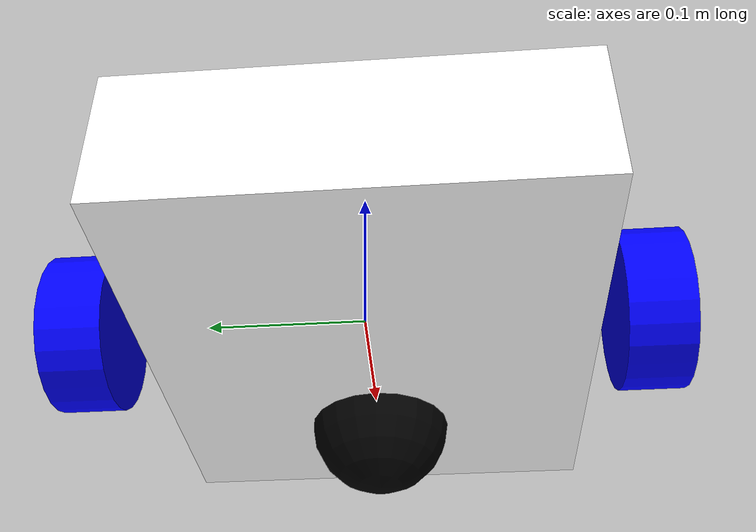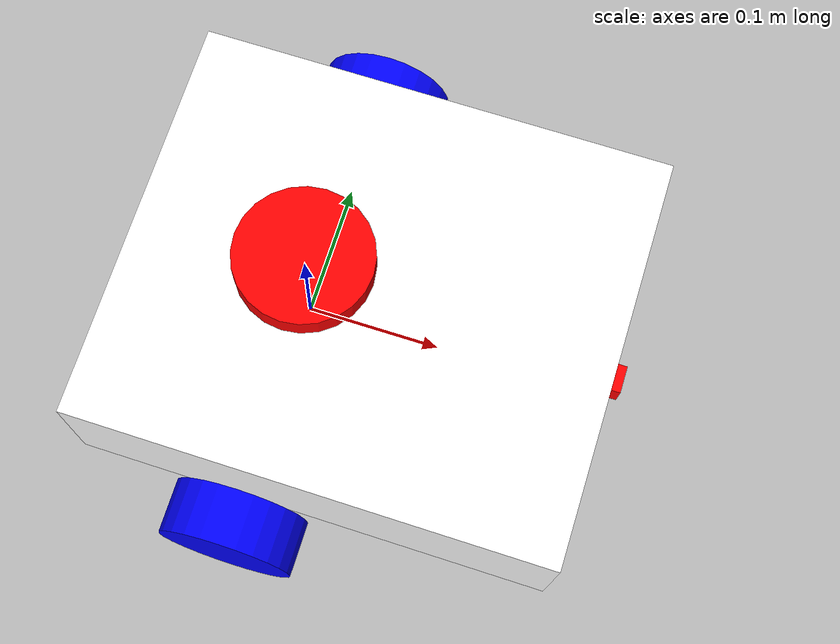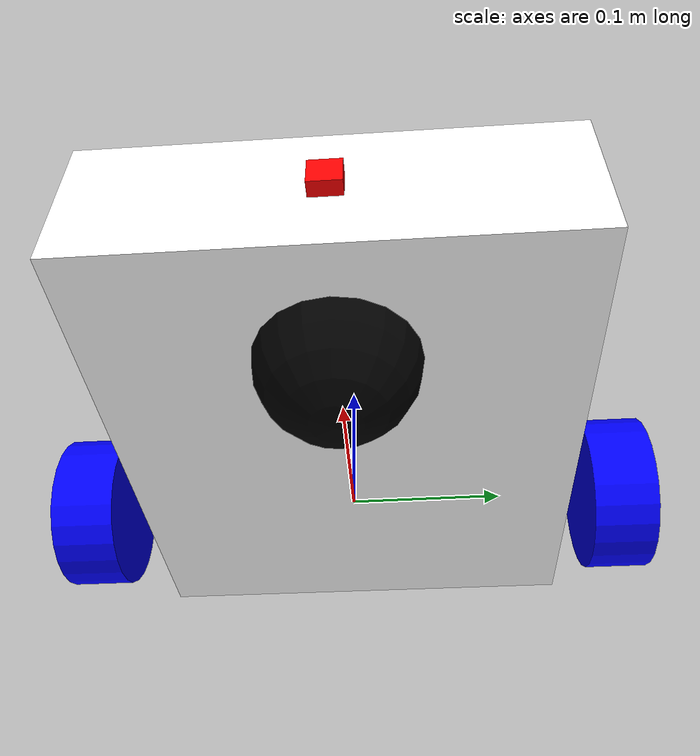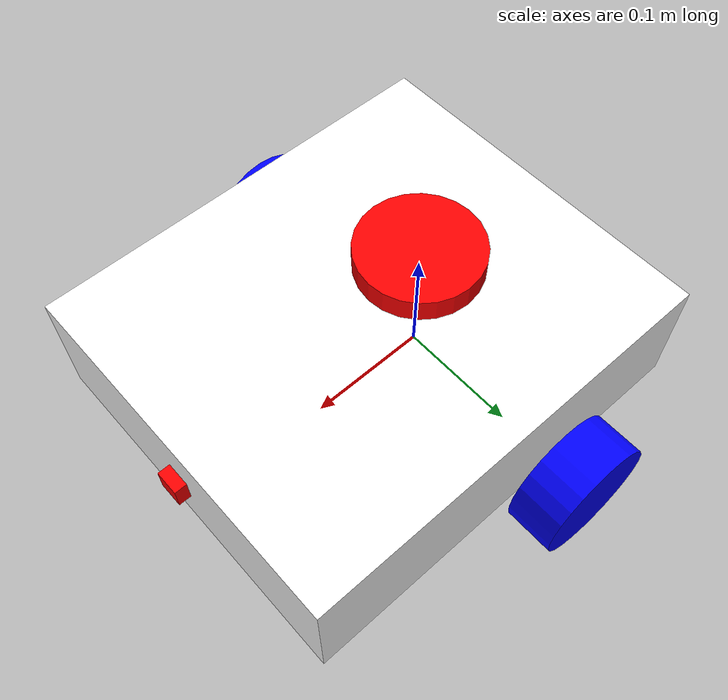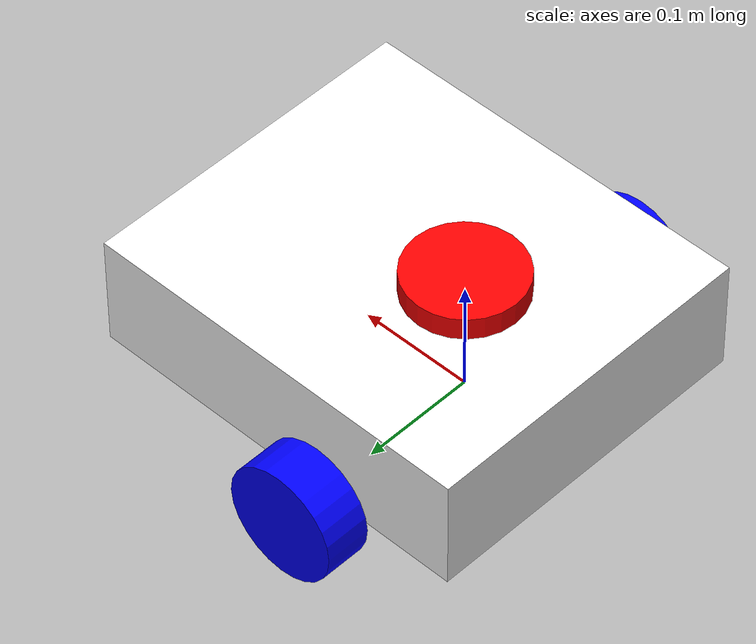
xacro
<?xml version="1.0"?>
<robot xmlns:xacro="http://www.ros.org/wiki/xacro"  name="robot">

    <xacro:arg name="use_ros2_control" default="true"/>
    <xacro:include filename="robot_model.xacro"/>

    <!--Conditional such that we can use either of ros2_control or gazebo_control-->
    <xacro:if value="$(arg use_ros2_control)">
        <xacro:include filename="ros2_control.xacro"/>
    </xacro:if>

    <xacro:unless value="$(arg use_ros2_control)">
        <xacro:include filename="gazebo_control.xacro"/>
    </xacro:unless>

    <xacro:include filename="lidar.xacro"/>
    <xacro:include filename="depth_camera.xacro"/>
</robot>

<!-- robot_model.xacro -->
<robot xmlns:xacro="http://www.ros.org/wiki/xacro">

    <xacro:include filename="inertial_macros.xacro"/>

    <!-- MATERIAL FOR ROBOT MODEL -->
    <material name="white">
        <color rgba="1 1 1 1"/>
    </material>

    <material name="black">
        <color rgba="0 0 0 1"/>
    </material>

    <material name="red">
        <color rgba="1 0 0 1"/>
    </material>

    <material name="blue">
        <color rgba="0 0 1 1"/>
    </material>

    <material name="green">
        <color rgba="0 1 0 1"/>
    </material>

    <!-- BASE LINK -->

    <link name="base_link"></link>

    <!--BASE FOOTPRINT-->
    <link name="base_footprint"/>

    <joint name="base_footprint_joint" type="fixed">
        <parent link="base_link"/>
        <child link="base_footprint"/>
        <origin xyz="0 0 0" ryp="0 0 0"/>
    </joint>

    <!-- CHASIS LINK -->
    <joint name="base_to_chassis" type="fixed">
        <parent link="base_link"/>
        <child link="chasis"/>
        <origin xyz="-0.1 0 0" rpy="0 0 0"/>
    </joint>

    <link name="chasis">
        <visual>
            <origin xyz="0.15 0 0.05" rpy="0 0 0"/>
            <geometry>
                <box size="0.35 0.3 0.1"/>
            </geometry>
            <material name="white"/>
        </visual>
        <collision>
            <origin xyz="0.15 0 0.05" rpy="0 0 0"/>
            <geometry>
                <box size="0.35 0.3 0.1"/>
            </geometry>
        </collision>
        <xacro:inertial_box mass="0.5" x="0.35" y="0.3" z="0.1">
            <origin xyz="0.15 0 0.05" rpy="0 0 0"/>
        </xacro:inertial_box>
    </link>

    <gazebo reference="chasis">
        <material>Gazebo/White</material>
    </gazebo>

    <!-- LEFT WHEELS LINKS -->
    <joint name="base_to_left_wheel" type="continuous">
        <parent link="base_link"/>
        <child link="left_wheel"/>
        <origin xyz="0 0.175 0" rpy="-${pi/2} 0 0"/>
        <axis xyz="0 0 1"/>
    </joint>

    <link name="left_wheel">
        <visual>
            <geometry>
                <cylinder radius="0.05" length="0.04"/>
            </geometry>
            <material name="blue"/>
        </visual>
        <collision>
            <geometry>
                <cylinder radius="0.05" length="0.04"/>
            </geometry>
        </collision>
        <xacro:inertial_cylinder mass="0.1" length="0.04" radius="0.05">
            <origin xyz="0 0 0" rpy="0 0 0"/>
        </xacro:inertial_cylinder>
    </link>

    <gazebo reference="left_wheel">
        <material>Gazebo/Blue</material>
    </gazebo>

    <!-- RIGHT WHEELS LINKS -->
    <joint name="base_to_right_wheel" type="continuous">
        <parent link="base_link"/>
        <child link="right_wheel"/>
        <origin xyz="0 -0.175 0" rpy="${pi/2} 0 0"/>
        <axis xyz="0 0 -1"/>
    </joint>

    <link name="right_wheel">
        <visual>
            <geometry>
                <cylinder radius="0.05" length="0.04"/>
            </geometry>
            <material name="blue"/>
        </visual>
        <collision>
            <geometry>
                <cylinder radius="0.05" length="0.04"/>
            </geometry>
        </collision>
        <xacro:inertial_cylinder mass="0.1" length="0.04" radius="0.05">
            <origin xyz="0 0 0" rpy="0 0 0"/>
        </xacro:inertial_cylinder>
    </link>

    <gazebo reference="right_wheel">
        <material>Gazebo/Blue</material>
    </gazebo>

    <!-- CASTOR WHEEL LINK -->
    <joint name="chasis_to_castor_wheel" type="fixed">
        <parent link="chasis"/>
        <child link="castor_wheel"/>
        <origin xyz="0.24 0 0"/>
    </joint>

    <link name="castor_wheel">
        <visual>
            <geometry>
                <sphere radius="0.05"/>
            </geometry>
            <material name="black"/>
        </visual>
        <collision>
            <geometry>
                <sphere radius="0.05"/>
            </geometry>
        </collision>
        <xacro:inertial_sphere mass="0.05" radius="0.05">
            <origin xyz="0 0 0" rpy="0 0 0"/>
        </xacro:inertial_sphere>
    </link>

    <gazebo reference="castor_wheel">
        <material>Gazebo/Black</material>
        <mu1 value = "0.001"/>
        <mu2 value = "0.001"/>
    </gazebo>

</robot>

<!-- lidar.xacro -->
<robot xmlns:xacro="http://www.ros.org/wiki/xacro">

  <joint name="laser_joint" type="fixed">
    <parent link="chasis"/>
    <child link="laser_frame"/>
    <origin xyz="0.1 0 0.1" rpy="0 0 0"/>
  </joint>

  <link name="laser_frame">
    <visual>
      <geometry>
        <cylinder radius="0.05" length="0.04"/>
      </geometry>
      <material name="red"/>
    </visual>
    <collision>
      <geometry>
        <cylinder radius="0.05" length="0.04"/>
      </geometry>
    </collision>
    <xacro:inertial_cylinder mass="0.1" length="0.04" radius="0.05">
      <origin xyz="0 0 0" rpy="0 0 0"/>
    </xacro:inertial_cylinder>
  </link>

  <gazebo reference="laser_frame">

    <material>Gazebo/Red</material>

    <sensor name="laser" type="ray">
      <pose> 0 0 0 0 0 0 </pose>
      <visualize>false</visualize>
      <update_rate>10</update_rate>
      <ray>
        <scan>
          <horizontal>
            <samples>360</samples>
            <resolution>1</resolution>
            <min_angle>-3.14159</min_angle>
            <max_angle>3.14159</max_angle>
          </horizontal>
        </scan>
        <range>
          <min>0.3</min>
          <max>5</max>
          <resolution>0.01</resolution>
        </range>
      </ray>

      <!--Name of the plugin can be anything but filename should be accurate-->
      <plugin name="laser_controller" filename="libgazebo_ros_ray_sensor.so">

        <!--this tells what topic to publish LaserScan msg onto i.e., "scan"-->
        <ros>
          <argument>~/out:=scan</argument>
        </ros>
        <output_type>sensor_msgs/LaserScan</output_type>
        <frame_name>laser_frame</frame_name>
      </plugin>
    </sensor>
  </gazebo>

</robot>

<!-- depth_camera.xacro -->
<robot xmlns:xacro="http://www.ros.org/wiki/xacro">

  <joint name="camera_joint" type="fixed">
    <parent link="chasis"/>
    <child link="camera_link"/>
    <origin xyz="0.33 0 0.05" rpy="0 0 0"/>
  </joint>

  <link name="camera_link">
    <visual>
      <geometry>
        <box size="0.01 0.02 0.02"/>
      </geometry>
      <material name="red"/>
    </visual>
  </link>

  <joint name="camera_optical_joint" type="fixed">
    <parent link="camera_link"/>
    <child link="camera_link_optical"/>
    <origin xyz="0 0 0" rpy="${-pi/2} 0 ${-pi/2}"/>
  </joint>

  <link name="camera_link_optical"> </link>

  <gazebo reference="camera_link">

    <material>Gazebo/Red</material>

    <sensor name="camera" type="depth">
      <pose> 0 0 0 0 0 0 </pose>
      <visualize>true</visualize>
      <update_rate>10</update_rate>
      <camera>
        <horizontal_fov>1.089</horizontal_fov> <!--as per what horizontal fov your camera provides-->
        <image>
          <format>B8G8R8</format>
          <width>640</width>
          <height>480</height>
        </image>
        <clip>
          <near>0.05</near>
          <far>8.0</far>
        </clip>
      </camera>

      <!-- Name of the plugin can be anything but filename should be accurate -->
      <plugin name="camera_controller" filename="libgazebo_ros_camera.so">
        <frame_name>camera_link_optical</frame_name>
        <min_depth>0.1</min_depth>
        <max_depth>100.0</max_depth>
      </plugin>
    </sensor>
  </gazebo>

</robot>
